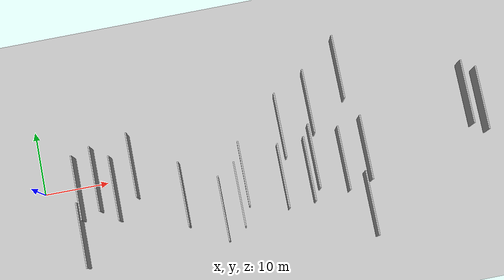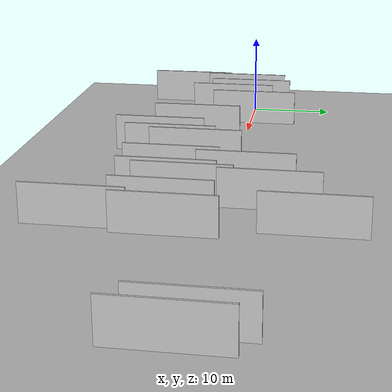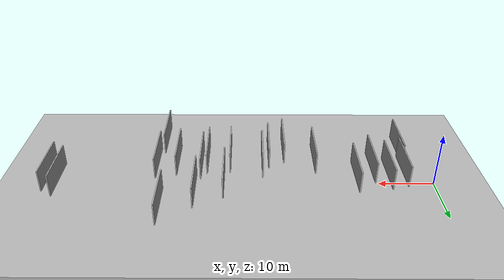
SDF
<?xml version="1.0" encoding="utf-8"?>

<sdf version="1.6">

   <world name="default">

      <gui fullscreen="0">

         <camera name="user_camera">

            <pose>-15 0 4.57585 0 0 0</pose>

            <view_controller>orbit</view_controller>

         </camera>

      </gui>

      <scene>

         <sky>

           <clouds>

             <speed>12</speed>

           </clouds>

         </sky>

         <ambient>0.4 0.4 0.4 1</ambient>

         <background>0.7 0.7 0.7 1</background>

         <shadows>1</shadows>

      </scene>

      <gravity>0 0 -9.8066</gravity>

      <magnetic_field>6e-06 2.3e-05 -4.2e-05</magnetic_field>

      <physics default="0" name="default_physics" type="ode">

         <ode>

            <solver>

               <type>quick</type>

               <iters>10</iters>

               <sor>1.0</sor>

               <use_dynamic_moi_rescaling>0</use_dynamic_moi_rescaling>

            </solver>

            <constraints>

               <cfm>0</cfm>

               <erp>0.2</erp>

               <contact_max_correcting_vel>100</contact_max_correcting_vel>

               <contact_surface_layer>0.001</contact_surface_layer>

            </constraints>

         </ode>

         <max_step_size>0.004</max_step_size>

         <real_time_factor>1</real_time_factor>

         <real_time_update_rate>250</real_time_update_rate>

      </physics>

      <light name="sun" type="directional">

         <cast_shadows>1</cast_shadows>

         <pose>0 0 10 0 0 0</pose>

         <diffuse>0.8 0.8 0.8 1</diffuse>

         <specular>0.2 0.2 0.2 1</specular>

         <attenuation>

            <range>1000</range>

            <constant>0.9</constant>

            <linear>0.01</linear>

            <quadratic>0.001</quadratic>

         </attenuation>

         <direction>-0.5 0.1 -0.9</direction>

      </light>

      <include>

         <name>ground_plane_1</name>

         <uri>model://HANNAS_ground_plane</uri>

         <pose>0 0 0  0 0 0</pose>

      </include>

      <include>

         <name>ground_plane_2</name>

         <uri>model://HANNAS_ground_plane</uri>

         <pose>100 0 0  0 0 0</pose>

      </include>

      <model name="HANNAS_wall_1">

         <static>1</static>

         <pose frame="">27.1731 -7.9387 2.5 0.000000 0.000000 1.570796</pose>

         <link name="link">

            <pose frame="">0 0 2.00 0 0 0</pose>

            <collision name="collision">

               <geometry>

                  <box>

                     <size>10.00 0.2 4.00</size>

                  </box>

               </geometry>

               <max_contacts>10</max_contacts>

               <surface>

                  <contact>

                     <ode/>

                  </contact>

                  <bounce/>

                  <friction>

                     <torsional>

                        <ode/>

                     </torsional>

                     <ode/>

                  </friction>

               </surface>

            </collision>

            <visual name="visual">

               <cast_shadows>0</cast_shadows>

               <geometry>

                  <box>

                     <size>10.00 0.2 4.00</size>

                  </box>

               </geometry>

               <material>

                  <script>

                     <uri>model://HANNAS_wall/materials/scripts</uri>

                     <uri>model://HANNAS_wall/materials/textures</uri>

                     <name>vrc/HANNAS_wall</name>

                  </script>

               </material>

            </visual>

            <self_collide>0</self_collide>

            <enable_wind>0</enable_wind>

            <kinematic>0</kinematic>

         </link>

      </model>

      <model name="HANNAS_wall_2">

         <static>1</static>

         <pose frame="">46.5648 -3.8939 2.5 0.000000 0.000000 1.570796</pose>

         <link name="link">

            <pose frame="">0 0 2.00 0 0 0</pose>

            <collision name="collision">

               <geometry>

                  <box>

                     <size>10.00 0.2 4.00</size>

                  </box>

               </geometry>

               <max_contacts>10</max_contacts>

               <surface>

                  <contact>

                     <ode/>

                  </contact>

                  <bounce/>

                  <friction>

                     <torsional>

                        <ode/>

                     </torsional>

                     <ode/>

                  </friction>

               </surface>

            </collision>

            <visual name="visual">

               <cast_shadows>0</cast_shadows>

               <geometry>

                  <box>

                     <size>10.00 0.2 4.00</size>

                  </box>

               </geometry>

               <material>

                  <script>

                     <uri>model://HANNAS_wall/materials/scripts</uri>

                     <uri>model://HANNAS_wall/materials/textures</uri>

                     <name>vrc/HANNAS_wall</name>

                  </script>

               </material>

            </visual>

            <self_collide>0</self_collide>

            <enable_wind>0</enable_wind>

            <kinematic>0</kinematic>

         </link>

      </model>

      <model name="HANNAS_wall_3">

         <static>1</static>

         <pose frame="">38.0335 2.9480 2.5 0.000000 0.000000 1.570796</pose>

         <link name="link">

            <pose frame="">0 0 2.00 0 0 0</pose>

            <collision name="collision">

               <geometry>

                  <box>

                     <size>10.00 0.2 4.00</size>

                  </box>

               </geometry>

               <max_contacts>10</max_contacts>

               <surface>

                  <contact>

                     <ode/>

                  </contact>

                  <bounce/>

                  <friction>

                     <torsional>

                        <ode/>

                     </torsional>

                     <ode/>

                  </friction>

               </surface>

            </collision>

            <visual name="visual">

               <cast_shadows>0</cast_shadows>

               <geometry>

                  <box>

                     <size>10.00 0.2 4.00</size>

                  </box>

               </geometry>

               <material>

                  <script>

                     <uri>model://HANNAS_wall/materials/scripts</uri>

                     <uri>model://HANNAS_wall/materials/textures</uri>

                     <name>vrc/HANNAS_wall</name>

                  </script>

               </material>

            </visual>

            <self_collide>0</self_collide>

            <enable_wind>0</enable_wind>

            <kinematic>0</kinematic>

         </link>

      </model>

      <model name="HANNAS_wall_4">

         <static>1</static>

         <pose frame="">48.5227 10.1563 2.5 0.000000 0.000000 1.570796</pose>

         <link name="link">

            <pose frame="">0 0 2.00 0 0 0</pose>

            <collision name="collision">

               <geometry>

                  <box>

                     <size>10.00 0.2 4.00</size>

                  </box>

               </geometry>

               <max_contacts>10</max_contacts>

               <surface>

                  <contact>

                     <ode/>

                  </contact>

                  <bounce/>

                  <friction>

                     <torsional>

                        <ode/>

                     </torsional>

                     <ode/>

                  </friction>

               </surface>

            </collision>

            <visual name="visual">

               <cast_shadows>0</cast_shadows>

               <geometry>

                  <box>

                     <size>10.00 0.2 4.00</size>

                  </box>

               </geometry>

               <material>

                  <script>

                     <uri>model://HANNAS_wall/materials/scripts</uri>

                     <uri>model://HANNAS_wall/materials/textures</uri>

                     <name>vrc/HANNAS_wall</name>

                  </script>

               </material>

            </visual>

            <self_collide>0</self_collide>

            <enable_wind>0</enable_wind>

            <kinematic>0</kinematic>

         </link>

      </model>

      <model name="HANNAS_wall_5">

         <static>1</static>

         <pose frame="">8.8101 0.2794 2.5 0.000000 0.000000 1.570796</pose>

         <link name="link">

            <pose frame="">0 0 2.00 0 0 0</pose>

            <collision name="collision">

               <geometry>

                  <box>

                     <size>10.00 0.2 4.00</size>

                  </box>

               </geometry>

               <max_contacts>10</max_contacts>

               <surface>

                  <contact>

                     <ode/>

                  </contact>

                  <bounce/>

                  <friction>

                     <torsional>

                        <ode/>

                     </torsional>

                     <ode/>

                  </friction>

               </surface>

            </collision>

            <visual name="visual">

               <cast_shadows>0</cast_shadows>

               <geometry>

                  <box>

                     <size>10.00 0.2 4.00</size>

                  </box>

               </geometry>

               <material>

                  <script>

                     <uri>model://HANNAS_wall/materials/scripts</uri>

                     <uri>model://HANNAS_wall/materials/textures</uri>

                     <name>vrc/HANNAS_wall</name>

                  </script>

               </material>

            </visual>

            <self_collide>0</self_collide>

            <enable_wind>0</enable_wind>

            <kinematic>0</kinematic>

         </link>

      </model>

      <model name="HANNAS_wall_6">

         <static>1</static>

         <pose frame="">42.9810 5.7476 2.5 0.000000 0.000000 1.570796</pose>

         <link name="link">

            <pose frame="">0 0 2.00 0 0 0</pose>

            <collision name="collision">

               <geometry>

                  <box>

                     <size>10.00 0.2 4.00</size>

                  </box>

               </geometry>

               <max_contacts>10</max_contacts>

               <surface>

                  <contact>

                     <ode/>

                  </contact>

                  <bounce/>

                  <friction>

                     <torsional>

                        <ode/>

                     </torsional>

                     <ode/>

                  </friction>

               </surface>

            </collision>

            <visual name="visual">

               <cast_shadows>0</cast_shadows>

               <geometry>

                  <box>

                     <size>10.00 0.2 4.00</size>

                  </box>

               </geometry>

               <material>

                  <script>

                     <uri>model://HANNAS_wall/materials/scripts</uri>

                     <uri>model://HANNAS_wall/materials/textures</uri>

                     <name>vrc/HANNAS_wall</name>

                  </script>

               </material>

            </visual>

            <self_collide>0</self_collide>

            <enable_wind>0</enable_wind>

            <kinematic>0</kinematic>

         </link>

      </model>

      <model name="HANNAS_wall_7">

         <static>1</static>

         <pose frame="">14.6772 1.2651 2.5 0.000000 0.000000 1.570796</pose>

         <link name="link">

            <pose frame="">0 0 2.00 0 0 0</pose>

            <collision name="collision">

               <geometry>

                  <box>

                     <size>10.00 0.2 4.00</size>

                  </box>

               </geometry>

               <max_contacts>10</max_contacts>

               <surface>

                  <contact>

                     <ode/>

                  </contact>

                  <bounce/>

                  <friction>

                     <torsional>

                        <ode/>

                     </torsional>

                     <ode/>

                  </friction>

               </surface>

            </collision>

            <visual name="visual">

               <cast_shadows>0</cast_shadows>

               <geometry>

                  <box>

                     <size>10.00 0.2 4.00</size>

                  </box>

               </geometry>

               <material>

                  <script>

                     <uri>model://HANNAS_wall/materials/scripts</uri>

                     <uri>model://HANNAS_wall/materials/textures</uri>

                     <name>vrc/HANNAS_wall</name>

                  </script>

               </material>

            </visual>

            <self_collide>0</self_collide>

            <enable_wind>0</enable_wind>

            <kinematic>0</kinematic>

         </link>

      </model>

      <model name="HANNAS_wall_8">

         <static>1</static>

         <pose frame="">49.4049 -11.4374 2.5 0.000000 0.000000 1.570796</pose>

         <link name="link">

            <pose frame="">0 0 2.00 0 0 0</pose>

            <collision name="collision">

               <geometry>

                  <box>

                     <size>10.00 0.2 4.00</size>

                  </box>

               </geometry>

               <max_contacts>10</max_contacts>

               <surface>

                  <contact>

                     <ode/>

                  </contact>

                  <bounce/>

                  <friction>

                     <torsional>

                        <ode/>

                     </torsional>

                     <ode/>

                  </friction>

               </surface>

            </collision>

            <visual name="visual">

               <cast_shadows>0</cast_shadows>

               <geometry>

                  <box>

                     <size>10.00 0.2 4.00</size>

                  </box>

               </geometry>

               <material>

                  <script>

                     <uri>model://HANNAS_wall/materials/scripts</uri>

                     <uri>model://HANNAS_wall/materials/textures</uri>

                     <name>vrc/HANNAS_wall</name>

                  </script>

               </material>

            </visual>

            <self_collide>0</self_collide>

            <enable_wind>0</enable_wind>

            <kinematic>0</kinematic>

         </link>

      </model>

      <model name="HANNAS_wall_9">

         <static>1</static>

         <pose frame="">50.2305 -2.9388 2.5 0.000000 0.000000 1.570796</pose>

         <link name="link">

            <pose frame="">0 0 2.00 0 0 0</pose>

            <collision name="collision">

               <geometry>

                  <box>

                     <size>10.00 0.2 4.00</size>

                  </box>

               </geometry>

               <max_contacts>10</max_contacts>

               <surface>

                  <contact>

                     <ode/>

                  </contact>

                  <bounce/>

                  <friction>

                     <torsional>

                        <ode/>

                     </torsional>

                     <ode/>

                  </friction>

               </surface>

            </collision>

            <visual name="visual">

               <cast_shadows>0</cast_shadows>

               <geometry>

                  <box>

                     <size>10.00 0.2 4.00</size>

                  </box>

               </geometry>

               <material>

                  <script>

                     <uri>model://HANNAS_wall/materials/scripts</uri>

                     <uri>model://HANNAS_wall/materials/textures</uri>

                     <name>vrc/HANNAS_wall</name>

                  </script>

               </material>

            </visual>

            <self_collide>0</self_collide>

            <enable_wind>0</enable_wind>

            <kinematic>0</kinematic>

         </link>

      </model>

      <model name="HANNAS_wall_10">

         <static>1</static>

         <pose frame="">67.2007 2.5111 2.5 0.000000 0.000000 1.570796</pose>

         <link name="link">

            <pose frame="">0 0 2.00 0 0 0</pose>

            <collision name="collision">

               <geometry>

                  <box>

                     <size>10.00 0.2 4.00</size>

                  </box>

               </geometry>

               <max_contacts>10</max_contacts>

               <surface>

                  <contact>

                     <ode/>

                  </contact>

                  <bounce/>

                  <friction>

                     <torsional>

                        <ode/>

                     </torsional>

                     <ode/>

                  </friction>

               </surface>

            </collision>

            <visual name="visual">

               <cast_shadows>0</cast_shadows>

               <geometry>

                  <box>

                     <size>10.00 0.2 4.00</size>

                  </box>

               </geometry>

               <material>

                  <script>

                     <uri>model://HANNAS_wall/materials/scripts</uri>

                     <uri>model://HANNAS_wall/materials/textures</uri>

                     <name>vrc/HANNAS_wall</name>

                  </script>

               </material>

            </visual>

            <self_collide>0</self_collide>

            <enable_wind>0</enable_wind>

            <kinematic>0</kinematic>

         </link>

      </model>

      <model name="HANNAS_wall_11">

         <static>1</static>

         <pose frame="">31.1586 -3.2877 2.5 0.000000 0.000000 1.570796</pose>

         <link name="link">

            <pose frame="">0 0 2.00 0 0 0</pose>

            <collision name="collision">

               <geometry>

                  <box>

                     <size>10.00 0.2 4.00</size>

                  </box>

               </geometry>

               <max_contacts>10</max_contacts>

               <surface>

                  <contact>

                     <ode/>

                  </contact>

                  <bounce/>

                  <friction>

                     <torsional>

                        <ode/>

                     </torsional>

                     <ode/>

                  </friction>

               </surface>

            </collision>

            <visual name="visual">

               <cast_shadows>0</cast_shadows>

               <geometry>

                  <box>

                     <size>10.00 0.2 4.00</size>

                  </box>

               </geometry>

               <material>

                  <script>

                     <uri>model://HANNAS_wall/materials/scripts</uri>

                     <uri>model://HANNAS_wall/materials/textures</uri>

                     <name>vrc/HANNAS_wall</name>

                  </script>

               </material>

            </visual>

            <self_collide>0</self_collide>

            <enable_wind>0</enable_wind>

            <kinematic>0</kinematic>

         </link>

      </model>

      <model name="HANNAS_wall_12">

         <static>1</static>

         <pose frame="">5.5006 -7.8141 2.5 0.000000 0.000000 1.570796</pose>

         <link name="link">

            <pose frame="">0 0 2.00 0 0 0</pose>

            <collision name="collision">

               <geometry>

                  <box>

                     <size>10.00 0.2 4.00</size>

                  </box>

               </geometry>

               <max_contacts>10</max_contacts>

               <surface>

                  <contact>

                     <ode/>

                  </contact>

                  <bounce/>

                  <friction>

                     <torsional>

                        <ode/>

                     </torsional>

                     <ode/>

                  </friction>

               </surface>

            </collision>

            <visual name="visual">

               <cast_shadows>0</cast_shadows>

               <geometry>

                  <box>

                     <size>10.00 0.2 4.00</size>

                  </box>

               </geometry>

               <material>

                  <script>

                     <uri>model://HANNAS_wall/materials/scripts</uri>

                     <uri>model://HANNAS_wall/materials/textures</uri>

                     <name>vrc/HANNAS_wall</name>

                  </script>

               </material>

            </visual>

            <self_collide>0</self_collide>

            <enable_wind>0</enable_wind>

            <kinematic>0</kinematic>

         </link>

      </model>

      <model name="HANNAS_wall_13">

         <static>1</static>

         <pose frame="">29.9609 -6.2413 2.5 0.000000 0.000000 1.570796</pose>

         <link name="link">

            <pose frame="">0 0 2.00 0 0 0</pose>

            <collision name="collision">

               <geometry>

                  <box>

                     <size>10.00 0.2 4.00</size>

                  </box>

               </geometry>

               <max_contacts>10</max_contacts>

               <surface>

                  <contact>

                     <ode/>

                  </contact>

                  <bounce/>

                  <friction>

                     <torsional>

                        <ode/>

                     </torsional>

                     <ode/>

                  </friction>

               </surface>

            </collision>

            <visual name="visual">

               <cast_shadows>0</cast_shadows>

               <geometry>

                  <box>

                     <size>10.00 0.2 4.00</size>

                  </box>

               </geometry>

               <material>

                  <script>

                     <uri>model://HANNAS_wall/materials/scripts</uri>

                     <uri>model://HANNAS_wall/materials/textures</uri>

                     <name>vrc/HANNAS_wall</name>

                  </script>

               </material>

            </visual>

            <self_collide>0</self_collide>

            <enable_wind>0</enable_wind>

            <kinematic>0</kinematic>

         </link>

      </model>

      <model name="HANNAS_wall_14">

         <static>1</static>

         <pose frame="">11.4682 -1.7003 2.5 0.000000 0.000000 1.570796</pose>

         <link name="link">

            <pose frame="">0 0 2.00 0 0 0</pose>

            <collision name="collision">

               <geometry>

                  <box>

                     <size>10.00 0.2 4.00</size>

                  </box>

               </geometry>

               <max_contacts>10</max_contacts>

               <surface>

                  <contact>

                     <ode/>

                  </contact>

                  <bounce/>

                  <friction>

                     <torsional>

                        <ode/>

                     </torsional>

                     <ode/>

                  </friction>

               </surface>

            </collision>

            <visual name="visual">

               <cast_shadows>0</cast_shadows>

               <geometry>

                  <box>

                     <size>10.00 0.2 4.00</size>

                  </box>

               </geometry>

               <material>

                  <script>

                     <uri>model://HANNAS_wall/materials/scripts</uri>

                     <uri>model://HANNAS_wall/materials/textures</uri>

                     <name>vrc/HANNAS_wall</name>

                  </script>

               </material>

            </visual>

            <self_collide>0</self_collide>

            <enable_wind>0</enable_wind>

            <kinematic>0</kinematic>

         </link>

      </model>

      <model name="HANNAS_wall_15">

         <static>1</static>

         <pose frame="">69.2274 1.1420 2.5 0.000000 0.000000 1.570796</pose>

         <link name="link">

            <pose frame="">0 0 2.00 0 0 0</pose>

            <collision name="collision">

               <geometry>

                  <box>

                     <size>10.00 0.2 4.00</size>

                  </box>

               </geometry>

               <max_contacts>10</max_contacts>

               <surface>

                  <contact>

                     <ode/>

                  </contact>

                  <bounce/>

                  <friction>

                     <torsional>

                        <ode/>

                     </torsional>

                     <ode/>

                  </friction>

               </surface>

            </collision>

            <visual name="visual">

               <cast_shadows>0</cast_shadows>

               <geometry>

                  <box>

                     <size>10.00 0.2 4.00</size>

                  </box>

               </geometry>

               <material>

                  <script>

                     <uri>model://HANNAS_wall/materials/scripts</uri>

                     <uri>model://HANNAS_wall/materials/textures</uri>

                     <name>vrc/HANNAS_wall</name>

                  </script>

               </material>

            </visual>

            <self_collide>0</self_collide>

            <enable_wind>0</enable_wind>

            <kinematic>0</kinematic>

         </link>

      </model>

      <model name="HANNAS_wall_16">

         <static>1</static>

         <pose frame="">36.9852 -4.7885 2.5 0.000000 0.000000 1.570796</pose>

         <link name="link">

            <pose frame="">0 0 2.00 0 0 0</pose>

            <collision name="collision">

               <geometry>

                  <box>

                     <size>10.00 0.2 4.00</size>

                  </box>

               </geometry>

               <max_contacts>10</max_contacts>

               <surface>

                  <contact>

                     <ode/>

                  </contact>

                  <bounce/>

                  <friction>

                     <torsional>

                        <ode/>

                     </torsional>

                     <ode/>

                  </friction>

               </surface>

            </collision>

            <visual name="visual">

               <cast_shadows>0</cast_shadows>

               <geometry>

                  <box>

                     <size>10.00 0.2 4.00</size>

                  </box>

               </geometry>

               <material>

                  <script>

                     <uri>model://HANNAS_wall/materials/scripts</uri>

                     <uri>model://HANNAS_wall/materials/textures</uri>

                     <name>vrc/HANNAS_wall</name>

                  </script>

               </material>

            </visual>

            <self_collide>0</self_collide>

            <enable_wind>0</enable_wind>

            <kinematic>0</kinematic>

         </link>

      </model>

      <model name="HANNAS_wall_17">

         <static>1</static>

         <pose frame="">41.1083 -4.5135 2.5 0.000000 0.000000 1.570796</pose>

         <link name="link">

            <pose frame="">0 0 2.00 0 0 0</pose>

            <collision name="collision">

               <geometry>

                  <box>

                     <size>10.00 0.2 4.00</size>

                  </box>

               </geometry>

               <max_contacts>10</max_contacts>

               <surface>

                  <contact>

                     <ode/>

                  </contact>

                  <bounce/>

                  <friction>

                     <torsional>

                        <ode/>

                     </torsional>

                     <ode/>

                  </friction>

               </surface>

            </collision>

            <visual name="visual">

               <cast_shadows>0</cast_shadows>

               <geometry>

                  <box>

                     <size>10.00 0.2 4.00</size>

                  </box>

               </geometry>

               <material>

                  <script>

                     <uri>model://HANNAS_wall/materials/scripts</uri>

                     <uri>model://HANNAS_wall/materials/textures</uri>

                     <name>vrc/HANNAS_wall</name>

                  </script>

               </material>

            </visual>

            <self_collide>0</self_collide>

            <enable_wind>0</enable_wind>

            <kinematic>0</kinematic>

         </link>

      </model>

      <model name="HANNAS_wall_18">

         <static>1</static>

         <pose frame="">5.9199 -0.5898 2.5 0.000000 0.000000 1.570796</pose>

         <link name="link">

            <pose frame="">0 0 2.00 0 0 0</pose>

            <collision name="collision">

               <geometry>

                  <box>

                     <size>10.00 0.2 4.00</size>

                  </box>

               </geometry>

               <max_contacts>10</max_contacts>

               <surface>

                  <contact>

                     <ode/>

                  </contact>

                  <bounce/>

                  <friction>

                     <torsional>

                        <ode/>

                     </torsional>

                     <ode/>

                  </friction>

               </surface>

            </collision>

            <visual name="visual">

               <cast_shadows>0</cast_shadows>

               <geometry>

                  <box>

                     <size>10.00 0.2 4.00</size>

                  </box>

               </geometry>

               <material>

                  <script>

                     <uri>model://HANNAS_wall/materials/scripts</uri>

                     <uri>model://HANNAS_wall/materials/textures</uri>

                     <name>vrc/HANNAS_wall</name>

                  </script>

               </material>

            </visual>

            <self_collide>0</self_collide>

            <enable_wind>0</enable_wind>

            <kinematic>0</kinematic>

         </link>

      </model>

      <model name="HANNAS_wall_19">

         <static>1</static>

         <pose frame="">42.1725 -2.7260 2.5 0.000000 0.000000 1.570796</pose>

         <link name="link">

            <pose frame="">0 0 2.00 0 0 0</pose>

            <collision name="collision">

               <geometry>

                  <box>

                     <size>10.00 0.2 4.00</size>

                  </box>

               </geometry>

               <max_contacts>10</max_contacts>

               <surface>

                  <contact>

                     <ode/>

                  </contact>

                  <bounce/>

                  <friction>

                     <torsional>

                        <ode/>

                     </torsional>

                     <ode/>

                  </friction>

               </surface>

            </collision>

            <visual name="visual">

               <cast_shadows>0</cast_shadows>

               <geometry>

                  <box>

                     <size>10.00 0.2 4.00</size>

                  </box>

               </geometry>

               <material>

                  <script>

                     <uri>model://HANNAS_wall/materials/scripts</uri>

                     <uri>model://HANNAS_wall/materials/textures</uri>

                     <name>vrc/HANNAS_wall</name>

                  </script>

               </material>

            </visual>

            <self_collide>0</self_collide>

            <enable_wind>0</enable_wind>

            <kinematic>0</kinematic>

         </link>

      </model>

      <model name="HANNAS_wall_20">

         <static>1</static>

         <pose frame="">21.6402 -4.6185 2.5 0.000000 0.000000 1.570796</pose>

         <link name="link">

            <pose frame="">0 0 2.00 0 0 0</pose>

            <collision name="collision">

               <geometry>

                  <box>

                     <size>10.00 0.2 4.00</size>

                  </box>

               </geometry>

               <max_contacts>10</max_contacts>

               <surface>

                  <contact>

                     <ode/>

                  </contact>

                  <bounce/>

                  <friction>

                     <torsional>

                        <ode/>

                     </torsional>

                     <ode/>

                  </friction>

               </surface>

            </collision>

            <visual name="visual">

               <cast_shadows>0</cast_shadows>

               <geometry>

                  <box>

                     <size>10.00 0.2 4.00</size>

                  </box>

               </geometry>

               <material>

                  <script>

                     <uri>model://HANNAS_wall/materials/scripts</uri>

                     <uri>model://HANNAS_wall/materials/textures</uri>

                     <name>vrc/HANNAS_wall</name>

                  </script>

               </material>

            </visual>

            <self_collide>0</self_collide>

            <enable_wind>0</enable_wind>

            <kinematic>0</kinematic>

         </link>

      </model>

   </world>

</sdf>

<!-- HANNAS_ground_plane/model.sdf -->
<sdf version="1.4">
<model name="HANNAS_ground_plane">
  <static>true</static>
    <link name="link">
      <collision name="collision">
        <geometry>
          <plane>
            <normal>0 0 1</normal>
            <size>1000 1000</size>
          </plane>
        </geometry>
        <surface>
          <friction>
            <ode>
              <mu>100</mu>
              <mu2>50</mu2>
            </ode>
          </friction>
        </surface>
      </collision>
      <visual name="visual">
        <cast_shadows>false</cast_shadows>
        <geometry>
          <plane>
            <normal>0 0 1</normal>
            <size>1000 1000</size>
          </plane>
        </geometry>
        <material>
          <script>
            <uri>model://HANNAS_ground_plane/materials/scripts/HANNAS_ground_plane.material</uri>
	    <uri>model://HANNAS_ground_plane/materials/textures</uri>
            <name>HANNASGroundPlane/Image</name>
          </script>
        </material>
      </visual>
    </link>
  </model>
</sdf>
